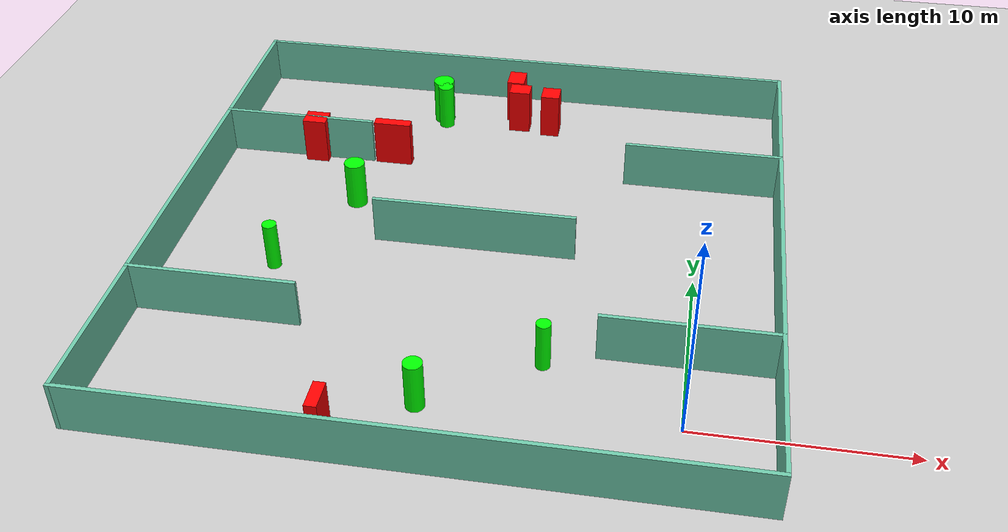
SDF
<sdf version="1.7">
 <world name="default">
  <light name="sun" type="directional">
   <pose>0 0 10 0 -0 0</pose>
   <diffuse>0.8 0.8 0.8 1</diffuse>
   <specular>0.2 0.2 0.2 1</specular>
   <attenuation>
    <range>1000</range>
    <constant>0.9</constant>
    <linear>0.01</linear>
    <quadratic>0.001</quadratic>
   </attenuation>
   <direction>-0.5 0.1 -0.9</direction>
   <spot><inner_angle>0</inner_angle><outer_angle>0</outer_angle><falloff>0</falloff></spot>
  </light>
  <model name="ground_plane">
   <static>1</static>
   <link name="link">
    <collision name="collision">
     <geometry><plane><normal>0 0 1</normal><size>100 100</size></plane></geometry>
     <surface>
      <contact><collide_bitmask>65535</collide_bitmask></contact>
      <friction><ode><mu>100</mu><mu2>50</mu2></ode></friction>
     </surface>
    </collision>
    <visual name="visual">
     <cast_shadows>0</cast_shadows>
     <geometry><plane><normal>0 0 1</normal><size>100 100</size></plane></geometry>
     <material>
      <script><uri>file://media/materials/scripts/gazebo.material</uri><name>Gazebo/Grey</name></script>
     </material>
    </visual>
   </link>
  </model>
  <gravity>0 0 -9.8</gravity>
  <magnetic_field>6e-06 2.3e-05 -4.2e-05</magnetic_field>
  <atmosphere type="adiabatic"/>
  <physics type="ode">
   <max_step_size>0.001</max_step_size>
   <real_time_factor>1</real_time_factor>
   <real_time_update_rate>1000</real_time_update_rate>
  </physics>
  <scene><ambient>0.4 0.4 0.4 1</ambient><background>0.7 0.7 0.7 1</background><shadows>1</shadows></scene>
  <spherical_coordinates>
   <surface_model>EARTH_WGS84</surface_model>
   <latitude_deg>0</latitude_deg>
   <longitude_deg>0</longitude_deg>
   <elevation>0</elevation>
   <heading_deg>0</heading_deg>
  </spherical_coordinates>
  <model name="my_base_walls">
   <link name="Wall_10">
    <collision name="Wall_10_Collision">
     <geometry><box><size>8.2 0.2 2.5</size></box></geometry>
     <pose>0 0 1.25 0 -0 0</pose>
    </collision>
    <visual name="Wall_10_Visual">
     <pose>0 0 1.25 0 -0 0</pose>
     <geometry><box><size>8.2 0.2 2.5</size></box></geometry>
     <material>
      <script><uri>file://media/materials/scripts/gazebo.material</uri><name>Gazebo/Grey</name></script>
      <ambient>0.435294 0.796078 0.67451 1</ambient>
     </material>
     <meta><layer>0</layer></meta>
    </visual>
    <pose>-11 -7 0 0 -0 0</pose>
   </link>
   <link name="Wall_12">
    <collision name="Wall_12_Collision">
     <geometry><box><size>8.2 0.2 2.5</size></box></geometry>
     <pose>0 0 1.25 0 -0 0</pose>
    </collision>
    <visual name="Wall_12_Visual">
     <pose>0 0 1.25 0 -0 0</pose>
     <geometry><box><size>8.2 0.2 2.5</size></box></geometry>
     <material>
      <script><uri>file://media/materials/scripts/gazebo.material</uri><name>Gazebo/Grey</name></script>
      <ambient>0.435294 0.796078 0.67451 1</ambient>
     </material>
     <meta><layer>0</layer></meta>
    </visual>
    <pose>-11 7 0 0 -0 0</pose>
   </link>
   <link name="Wall_14">
    <collision name="Wall_14_Collision">
     <geometry><box><size>8.2 0.2 2.5</size></box></geometry>
     <pose>0 0 1.25 0 -0 0</pose>
    </collision>
    <visual name="Wall_14_Visual">
     <pose>0 0 1.25 0 -0 0</pose>
     <geometry><box><size>8.2 0.2 2.5</size></box></geometry>
     <material>
      <script><uri>file://media/materials/scripts/gazebo.material</uri><name>Gazebo/Grey</name></script>
      <ambient>0.435294 0.796078 0.67451 1</ambient>
     </material>
     <meta><layer>0</layer></meta>
    </visual>
    <pose>11 7 0 0 -0 3.14159</pose>
   </link>
   <link name="Wall_16">
    <collision name="Wall_16_Collision">
     <geometry><box><size>10.2 0.2 2.5</size></box></geometry>
     <pose>0 0 1.25 0 -0 0</pose>
    </collision>
    <visual name="Wall_16_Visual">
     <pose>0 0 1.25 0 -0 0</pose>
     <geometry><box><size>10.2 0.2 2.5</size></box></geometry>
     <material>
      <script><uri>file://media/materials/scripts/gazebo.material</uri><name>Gazebo/Grey</name></script>
      <ambient>0.435294 0.796078 0.67451 1</ambient>
     </material>
     <meta><layer>0</layer></meta>
    </visual>
    <pose>0 0 0 0 -0 3.14159</pose>
   </link>
   <link name="Wall_2">
    <collision name="Wall_2_Collision">
     <geometry><box><size>30.2 0.2 2.5</size></box></geometry>
     <pose>0 0 1.25 0 -0 0</pose>
    </collision>
    <visual name="Wall_2_Visual">
     <pose>0 0 1.25 0 -0 0</pose>
     <geometry><box><size>30.2 0.2 2.5</size></box></geometry>
     <material>
      <script><uri>file://media/materials/scripts/gazebo.material</uri><name>Gazebo/Grey</name></script>
      <ambient>0.435294 0.796078 0.67451 1</ambient>
     </material>
     <meta><layer>0</layer></meta>
    </visual>
    <pose>0 -15 0 0 -0 3.14159</pose>
   </link>
   <link name="Wall_3">
    <collision name="Wall_3_Collision">
     <geometry><box><size>30.2 0.2 2.5</size></box></geometry>
     <pose>0 0 1.25 0 -0 0</pose>
    </collision>
    <visual name="Wall_3_Visual">
     <pose>0 0 1.25 0 -0 0</pose>
     <geometry><box><size>30.2 0.2 2.5</size></box></geometry>
     <material>
      <script><uri>file://media/materials/scripts/gazebo.material</uri><name>Gazebo/Grey</name></script>
      <ambient>0.435294 0.796078 0.67451 1</ambient>
     </material>
     <meta><layer>0</layer></meta>
    </visual>
    <pose>-15 0 0 0 -0 1.5708</pose>
   </link>
   <link name="Wall_4">
    <collision name="Wall_4_Collision">
     <geometry><box><size>30.2 0.2 2.5</size></box></geometry>
     <pose>0 0 1.25 0 -0 0</pose>
    </collision>
    <visual name="Wall_4_Visual">
     <pose>0 0 1.25 0 -0 0</pose>
     <geometry><box><size>30.2 0.2 2.5</size></box></geometry>
     <material>
      <script><uri>file://media/materials/scripts/gazebo.material</uri><name>Gazebo/Grey</name></script>
      <ambient>0.435294 0.796078 0.67451 1</ambient>
     </material>
     <meta><layer>0</layer></meta>
    </visual>
    <pose>0 15 0 0 -0 0</pose>
   </link>
   <link name="Wall_6">
    <collision name="Wall_6_Collision">
     <geometry><box><size>30.2 0.2 2.5</size></box></geometry>
     <pose>0 0 1.25 0 -0 0</pose>
    </collision>
    <visual name="Wall_6_Visual">
     <pose>0 0 1.25 0 -0 0</pose>
     <geometry><box><size>30.2 0.2 2.5</size></box></geometry>
     <material>
      <script><uri>file://media/materials/scripts/gazebo.material</uri><name>Gazebo/Grey</name></script>
      <ambient>0.435294 0.796078 0.67451 1</ambient>
     </material>
     <meta><layer>0</layer></meta>
    </visual>
    <pose>15 0 0 0 -0 1.5708</pose>
   </link>
   <link name="Wall_8">
    <collision name="Wall_8_Collision">
     <geometry><box><size>8.2 0.2 2.5</size></box></geometry>
     <pose>0 0 1.25 0 -0 0</pose>
    </collision>
    <visual name="Wall_8_Visual">
     <pose>0 0 1.25 0 -0 0</pose>
     <geometry><box><size>8.2 0.2 2.5</size></box></geometry>
     <material>
      <script><uri>file://media/materials/scripts/gazebo.material</uri><name>Gazebo/Grey</name></script>
      <ambient>0.435294 0.796078 0.67451 1</ambient>
     </material>
     <meta><layer>0</layer></meta>
    </visual>
    <pose>11 -7 0 0 -0 3.14159</pose>
   </link>
   <static>1</static>
   <pose>-11 11 0 0 -0 0</pose>
  </model>
  <model name="cylinder1">
   <static>1</static>
   <link name="link">
    <inertial>
     <mass>1</mass>
     <inertia><ixx>0.5</ixx><ixy>0</ixy><ixz>0</ixz><iyy>0.5</iyy><iyz>0</iyz><izz>1</izz></inertia>
    </inertial>
    <collision name="collision">
     <geometry><cylinder><radius>0.5279050262721139</radius><length>2.5</length></cylinder></geometry>
    </collision>
    <visual name="visual">
     <geometry><cylinder><radius>0.5279050262721139</radius><length>2.5</length></cylinder></geometry>
     <material>
      <ambient>0 1 0 1</ambient>
      <diffuse>0 1 0 1</diffuse>
      <specular>0.1 0.1 0.1 1</specular>
      <emissive>0 0 0 0</emissive>
     </material>
    </visual>
   </link>
   <pose>-17.819833435993047 13.92263167339448 1.25 0 0 0</pose>
  </model>
  <model name="cylinder2">
   <static>1</static>
   <link name="link">
    <inertial>
     <mass>1</mass>
     <inertia><ixx>0.5</ixx><ixy>0</ixy><ixz>0</ixz><iyy>0.5</iyy><iyz>0</iyz><izz>1</izz></inertia>
    </inertial>
    <collision name="collision">
     <geometry><cylinder><radius>0.34739240932642595</radius><length>2.5</length></cylinder></geometry>
    </collision>
    <visual name="visual">
     <geometry><cylinder><radius>0.34739240932642595</radius><length>2.5</length></cylinder></geometry>
     <material>
      <ambient>0 1 0 1</ambient>
      <diffuse>0 1 0 1</diffuse>
      <specular>0.1 0.1 0.1 1</specular>
      <emissive>0 0 0 0</emissive>
     </material>
    </visual>
   </link>
   <pose>-6.377708723990821 3.059273946778359 1.25 0 0 0</pose>
  </model>
  <model name="cylinder3">
   <static>1</static>
   <link name="link">
    <inertial>
     <mass>1</mass>
     <inertia><ixx>0.5</ixx><ixy>0</ixy><ixz>0</ixz><iyy>0.5</iyy><iyz>0</iyz><izz>1</izz></inertia>
    </inertial>
    <collision name="collision">
     <geometry><cylinder><radius>0.4395484104303307</radius><length>2.5</length></cylinder></geometry>
    </collision>
    <visual name="visual">
     <geometry><cylinder><radius>0.4395484104303307</radius><length>2.5</length></cylinder></geometry>
     <material>
      <ambient>0 1 0 1</ambient>
      <diffuse>0 1 0 1</diffuse>
      <specular>0.1 0.1 0.1 1</specular>
      <emissive>0 0 0 0</emissive>
     </material>
    </visual>
   </link>
   <pose>-11.462194318680544 -0.30906905361245673 1.25 0 0 0</pose>
  </model>
  <model name="cylinder4">
   <static>1</static>
   <link name="link">
    <inertial>
     <mass>1</mass>
     <inertia><ixx>0.5</ixx><ixy>0</ixy><ixz>0</ixz><iyy>0.5</iyy><iyz>0</iyz><izz>1</izz></inertia>
    </inertial>
    <collision name="collision">
     <geometry><cylinder><radius>0.4203959036827945</radius><length>2.5</length></cylinder></geometry>
    </collision>
    <visual name="visual">
     <geometry><cylinder><radius>0.4203959036827945</radius><length>2.5</length></cylinder></geometry>
     <material>
      <ambient>0 1 0 1</ambient>
      <diffuse>0 1 0 1</diffuse>
      <specular>0.1 0.1 0.1 1</specular>
      <emissive>0 0 0 0</emissive>
     </material>
    </visual>
   </link>
   <pose>-14.714115958824253 22.343549776213333 1.25 0 0 0</pose>
  </model>
  <model name="cylinder5">
   <static>1</static>
   <link name="link">
    <inertial>
     <mass>1</mass>
     <inertia><ixx>0.5</ixx><ixy>0</ixy><ixz>0</ixz><iyy>0.5</iyy><iyz>0</iyz><izz>1</izz></inertia>
    </inertial>
    <collision name="collision">
     <geometry><cylinder><radius>0.5689709691059373</radius><length>2.5</length></cylinder></geometry>
    </collision>
    <visual name="visual">
     <geometry><cylinder><radius>0.5689709691059373</radius><length>2.5</length></cylinder></geometry>
     <material>
      <ambient>0 1 0 1</ambient>
      <diffuse>0 1 0 1</diffuse>
      <specular>0.1 0.1 0.1 1</specular>
      <emissive>0 0 0 0</emissive>
     </material>
    </visual>
   </link>
   <pose>-14.945844878186879 22.951394367196144 1.25 0 0 0</pose>
  </model>
  <model name="cylinder6">
   <static>1</static>
   <link name="link">
    <inertial>
     <mass>1</mass>
     <inertia><ixx>0.5</ixx><ixy>0</ixy><ixz>0</ixz><iyy>0.5</iyy><iyz>0</iyz><izz>1</izz></inertia>
    </inertial>
    <collision name="collision">
     <geometry><cylinder><radius>0.3532761200719179</radius><length>2.5</length></cylinder></geometry>
    </collision>
    <visual name="visual">
     <geometry><cylinder><radius>0.3532761200719179</radius><length>2.5</length></cylinder></geometry>
     <material>
      <ambient>0 1 0 1</ambient>
      <diffuse>0 1 0 1</diffuse>
      <specular>0.1 0.1 0.1 1</specular>
      <emissive>0 0 0 0</emissive>
     </material>
    </visual>
   </link>
   <pose>-20.48859719449015 8.083790534874652 1.25 0 0 0</pose>
  </model>
  <model name="box1">
   <static>1</static>
   <link name="link">
    <inertial>
     <mass>1</mass>
     <inertia><ixx>0.083</ixx><ixy>0</ixy><ixz>0</ixz><iyy>0.083</iyy><iyz>0</iyz><izz>0.083</izz></inertia>
    </inertial>
    <collision name="collision">
     <geometry><box><size>1.1493768198473084 0.9498394277148481 2.5</size></box></geometry>
    </collision>
    <visual name="visual">
     <geometry><box><size>1.1493768198473084 0.9498394277148481 2.5</size></box></geometry>
     <material>
      <ambient>1 0 0 1</ambient>
      <diffuse>1 0 0 1</diffuse>
      <specular>0.1 0.1 0.1 1</specular>
      <emissive>0 0 0 0</emissive>
     </material>
    </visual>
    <sensor name="my_contact" type="contact">
     <contact><collision>box_collision</collision><topic>__default_topic__</topic></contact>
    </sensor>
   </link>
   <pose>-10.47549913884357 22.738199011863202 1.25 0 0 0</pose>
  </model>
  <model name="box2">
   <static>1</static>
   <link name="link">
    <inertial>
     <mass>1</mass>
     <inertia><ixx>0.083</ixx><ixy>0</ixy><ixz>0</ixz><iyy>0.083</iyy><iyz>0</iyz><izz>0.083</izz></inertia>
    </inertial>
    <collision name="collision">
     <geometry><box><size>1.0121432966079347 1.0711959169742726 2.5</size></box></geometry>
    </collision>
    <visual name="visual">
     <geometry><box><size>1.0121432966079347 1.0711959169742726 2.5</size></box></geometry>
     <material>
      <ambient>1 0 0 1</ambient>
      <diffuse>1 0 0 1</diffuse>
      <specular>0.1 0.1 0.1 1</specular>
      <emissive>0 0 0 0</emissive>
     </material>
    </visual>
    <sensor name="my_contact" type="contact">
     <contact><collision>box_collision</collision><topic>__default_topic__</topic></contact>
    </sensor>
   </link>
   <pose>-8.70776579941847 22.570394242729208 1.25 0 0 0</pose>
  </model>
  <model name="box3">
   <static>1</static>
   <link name="link">
    <inertial>
     <mass>1</mass>
     <inertia><ixx>0.083</ixx><ixy>0</ixy><ixz>0</ixz><iyy>0.083</iyy><iyz>0</iyz><izz>0.083</izz></inertia>
    </inertial>
    <collision name="collision">
     <geometry><box><size>1.2461898442997508 1.0484745206276243 2.5</size></box></geometry>
    </collision>
    <visual name="visual">
     <geometry><box><size>1.2461898442997508 1.0484745206276243 2.5</size></box></geometry>
     <material>
      <ambient>1 0 0 1</ambient>
      <diffuse>1 0 0 1</diffuse>
      <specular>0.1 0.1 0.1 1</specular>
      <emissive>0 0 0 0</emissive>
     </material>
    </visual>
    <sensor name="my_contact" type="contact">
     <contact><collision>box_collision</collision><topic>__default_topic__</topic></contact>
    </sensor>
   </link>
   <pose>-21.03680145648193 17.96470285505491 1.25 0 0 0</pose>
  </model>
  <model name="box4">
   <static>1</static>
   <link name="link">
    <inertial>
     <mass>1</mass>
     <inertia><ixx>0.083</ixx><ixy>0</ixy><ixz>0</ixz><iyy>0.083</iyy><iyz>0</iyz><izz>0.083</izz></inertia>
    </inertial>
    <collision name="collision">
     <geometry><box><size>0.9522910651525622 1.279277991628036 2.5</size></box></geometry>
    </collision>
    <visual name="visual">
     <geometry><box><size>0.9522910651525622 1.279277991628036 2.5</size></box></geometry>
     <material>
      <ambient>1 0 0 1</ambient>
      <diffuse>1 0 0 1</diffuse>
      <specular>0.1 0.1 0.1 1</specular>
      <emissive>0 0 0 0</emissive>
     </material>
    </visual>
    <sensor name="my_contact" type="contact">
     <contact><collision>box_collision</collision><topic>__default_topic__</topic></contact>
    </sensor>
   </link>
   <pose>-10.861208819659144 23.973924671999505 1.25 0 0 0</pose>
  </model>
  <model name="box5">
   <static>1</static>
   <link name="link">
    <inertial>
     <mass>1</mass>
     <inertia><ixx>0.083</ixx><ixy>0</ixy><ixz>0</ixz><iyy>0.083</iyy><iyz>0</iyz><izz>0.083</izz></inertia>
    </inertial>
    <collision name="collision">
     <geometry><box><size>0.5572247610921878 1.4427235924315296 2.5</size></box></geometry>
    </collision>
    <visual name="visual">
     <geometry><box><size>0.5572247610921878 1.4427235924315296 2.5</size></box></geometry>
     <material>
      <ambient>1 0 0 1</ambient>
      <diffuse>1 0 0 1</diffuse>
      <specular>0.1 0.1 0.1 1</specular>
      <emissive>0 0 0 0</emissive>
     </material>
    </visual>
    <sensor name="my_contact" type="contact">
     <contact><collision>box_collision</collision><topic>__default_topic__</topic></contact>
    </sensor>
   </link>
   <pose>-14.973250641833552 -2.7542234145965234 1.25 0 0 0</pose>
  </model>
  <model name="box6">
   <static>1</static>
   <link name="link">
    <inertial>
     <mass>1</mass>
     <inertia><ixx>0.083</ixx><ixy>0</ixy><ixz>0</ixz><iyy>0.083</iyy><iyz>0</iyz><izz>0.083</izz></inertia>
    </inertial>
    <collision name="collision">
     <geometry><box><size>1.9788951590944923 0.5405008877093808 2.5</size></box></geometry>
    </collision>
    <visual name="visual">
     <geometry><box><size>1.9788951590944923 0.5405008877093808 2.5</size></box></geometry>
     <material>
      <ambient>1 0 0 1</ambient>
      <diffuse>1 0 0 1</diffuse>
      <specular>0.1 0.1 0.1 1</specular>
      <emissive>0 0 0 0</emissive>
     </material>
    </visual>
    <sensor name="my_contact" type="contact">
     <contact><collision>box_collision</collision><topic>__default_topic__</topic></contact>
    </sensor>
   </link>
   <pose>-16.791637286136122 18.123067326204932 1.25 0 0 0</pose>
  </model>
 </world>
</sdf>
